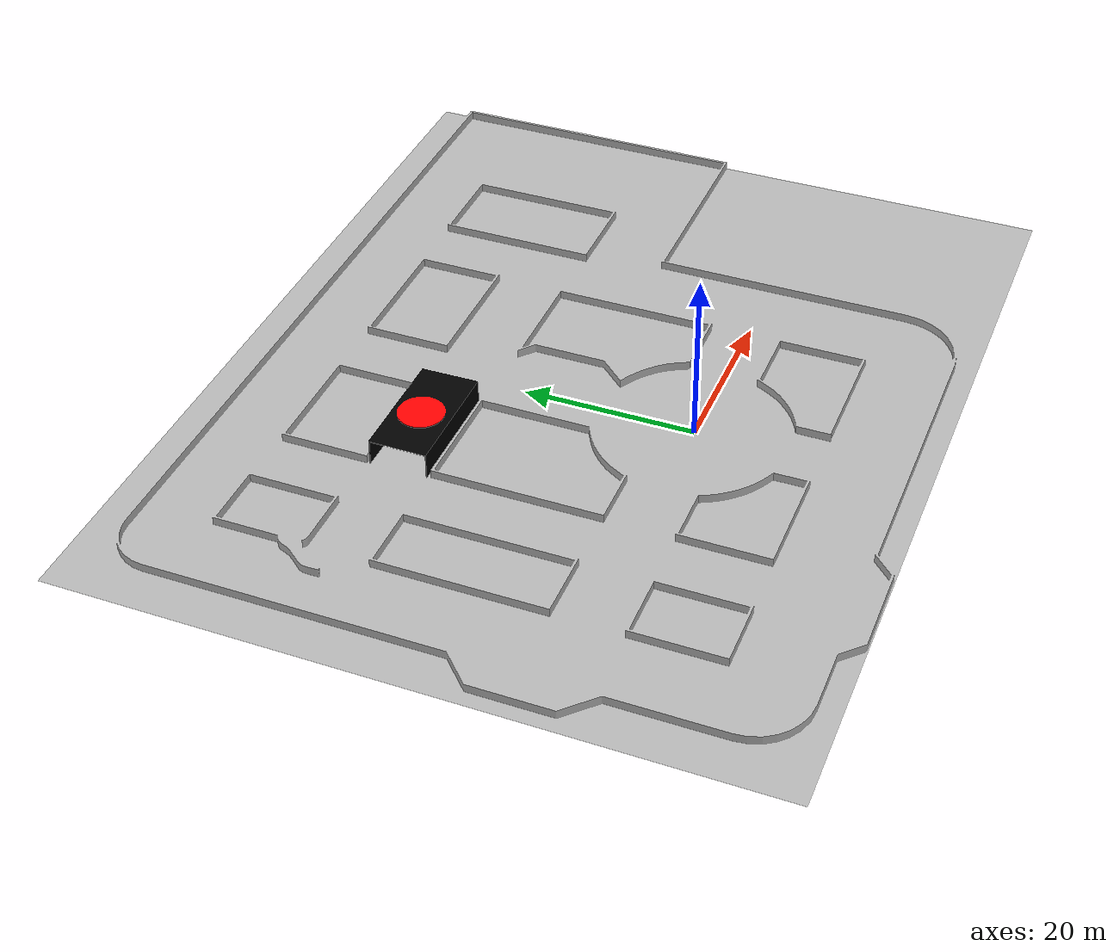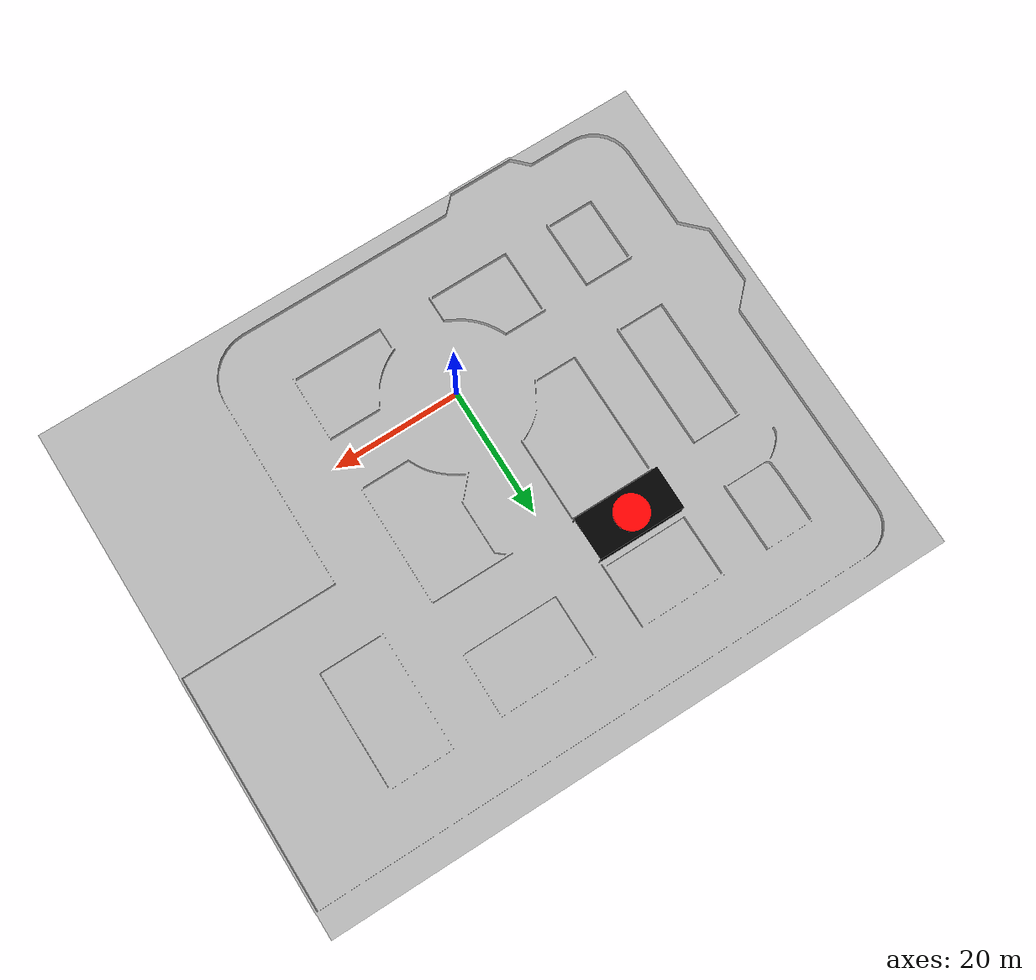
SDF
<?xml version="1.0" ?>
<sdf version='1.7'>
  <world name='ARABASIZ_PIST'>
    <scene>
      <grid>false</grid>
    </scene>
    <plugin
      filename="ignition-gazebo-physics-system"
      name="gz::sim::systems::Physics">
    </plugin>
    <plugin
      filename="ignition-gazebo-user-commands-system"
      name="gz::sim::systems::UserCommands">
    </plugin>
    <plugin
      filename="ignition-gazebo-scene-broadcaster-system"
      name="gz::sim::systems::SceneBroadcaster">
    </plugin>

    <plugin
      filename="ignition-gazebo-contact-system"
      name="gz::sim::systems::Contact">
    </plugin>

    <plugin
    	filename="libignition-gazebo-imu-system.so"
        name="ignition::gazebo::systems::Imu">
    </plugin>

    <plugin
      filename="ignition-gazebo-sensors-system"
      name="ignition::gazebo::systems::Sensors">
      <render_engine>ogre2</render_engine>
    </plugin>

        <!-- Light -->
     <light type="directional" name="sun">
       <cast_shadows>true</cast_shadows>
       <pose>0 0 10 0 0 0</pose>
       <diffuse>0.8 0.8 0.8 1</diffuse>
       <specular>0.2 0.2 0.2 1</specular>
       <attenuation>
       		<range>1000</range>
       		<constant>0.9</constant>
         	<linear>0.01</linear>
         	<quadratic>0.001</quadratic>
       </attenuation>
       <direction>-0.5 0.1 -0.9</direction>
     </light>

  <!-- Pist  -->
     <model name="duvarlı pist">
      <static>true</static>
        <link name="link">
           <collision name="collision">
             <geometry>
                <mesh>
                  <uri>duvarlı_pist.dae</uri>
                </mesh>
             </geometry>
           </collision>
           <visual name="visual">
             <geometry>
              <mesh>
                <uri>duvarlı_pist.dae</uri>
              </mesh>
             </geometry>
            </visual>
           </link>
        </model>

    </world>

</sdf>
